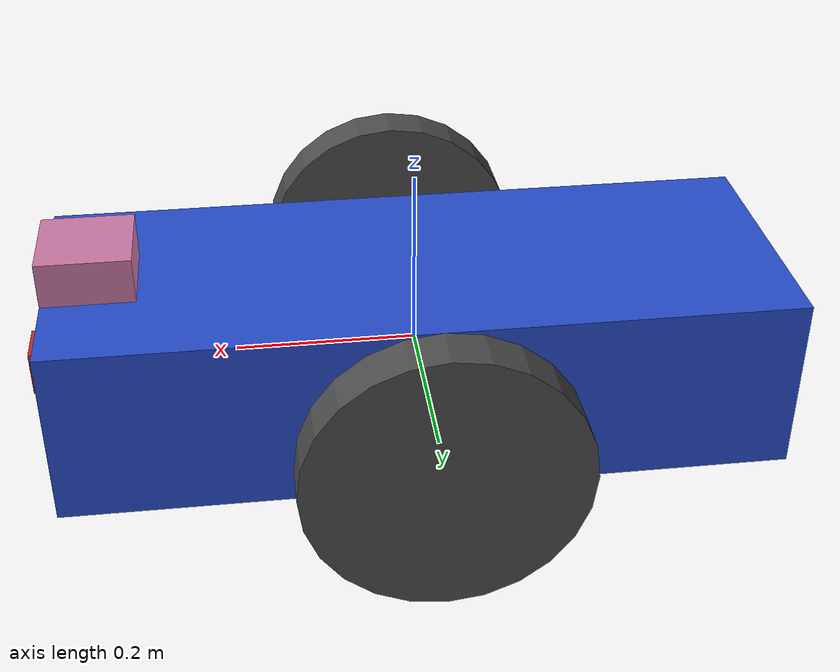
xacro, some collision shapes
<?xml version='1.0'?>

<robot name="my_robot" xmlns:xacro="http://www.ros.org/wiki/xacro">

  <xacro:include filename="$(find my_robot)/urdf/my_robot.gazebo" />

  <link name="robot_footprint"></link>

  <joint name="robot_footprint_joint" type="fixed">
    <origin xyz="0 0 0" rpy="0 0 0" />
    <parent link="robot_footprint"/>
    <child link="chassis" />
  </joint>

  <!--                      chassis                      -->
  <link name='chassis'>
    <pose>0 0 0.2 0 0 0</pose>

    <inertial>
      <mass value="15.0"/>
      <origin xyz="0.0 0 0" rpy=" 0 0 0"/>
      <inertia
          ixx="0.1" ixy="0" ixz="0"
          iyy="0.1" iyz="0"
          izz="0.1"
      />
    </inertial>

    <collision>
      <origin xyz="0 0 0" rpy=" 0 0 0"/>
      <geometry>
        <box size=".8 .3 .2"/>
      </geometry>
    </collision>

    <visual name='chassis_visual'>
      <origin xyz="0 0 0" rpy=" 0 0 0"/>
      <geometry>
        <box size=".8 .3 .2"/>
      </geometry>
    </visual>

    <collision name='back_caster_collision'>
      <origin xyz="-0.3 0 -0.075" rpy=" 0 0 0"/>
      <geometry>
        <sphere radius="0.075"/>
      </geometry>
    </collision>

    <visual name='back_caster_visual'>
      <origin xyz="-0.3 0 -0.075" rpy=" 0 0 0"/>
      <geometry>
        <sphere radius="0.075"/>
      </geometry>
    </visual>

    <collision name='front_caster_collision'>
      <origin xyz="0.3 0 -0.075" rpy=" 0 0 0"/>
      <geometry>
        <sphere radius="0.075"/>
      </geometry>
    </collision>

    <visual name='front_caster_visual'>
      <origin xyz="0.3 0 -0.075" rpy=" 0 0 0"/>
      <geometry>
        <sphere radius="0.075"/>
      </geometry>
    </visual>
  </link>
  <!--                      chassis                      -->

  <!--                      wheels                      -->
  <!-- left wheel -->
  <link name="left_wheel">
    <inertial>
      <mass value="5.0"/>
      <origin xyz="0 0 0" rpy="0 1.5707 1.5707"/>
      <inertia
          ixx="0.1" ixy="0" ixz="0"
          iyy="0.1" iyz="0"
          izz="0.1"
      />
    </inertial>

    <collision>
      <origin xyz="0 0 0" rpy="0 1.5707 1.5707"/>
      <geometry>
        <cylinder radius="0.15" length="0.05"/>
      </geometry>
    </collision>

    <visual>
      <origin xyz="0 0 0" rpy="0 1.5707 1.5707"/>
      <geometry>
        <cylinder radius="0.15" length="0.05"/>
      </geometry>
    </visual>
  </link>

  <!-- left wheel joint -->
  <joint type="continuous" name="left_wheel_hinge">
    <origin xyz="0 0.25 0" rpy="0 0 0"/>
    <child link="left_wheel"/>
    <parent link="chassis"/>
    <axis xyz="0 1 0" rpy="0 0 0"/>
    <limit effort="10000" velocity="1000"/>
    <dynamics damping="1.0" friction="1.0"/>
  </joint>

  <!-- right wheel -->
  <link name="right_wheel">
    <inertial>
      <mass value="5.0"/>
      <origin xyz="0 0 0" rpy="0 1.5707 1.5707"/>
      <inertia
          ixx="0.1" ixy="0" ixz="0"
          iyy="0.1" iyz="0"
          izz="0.1"
      />
    </inertial>

    <collision>
      <origin xyz="0 0 0" rpy="0 1.5707 1.5707"/>
      <geometry>
        <cylinder radius="0.15" length="0.05"/>
      </geometry>
    </collision>

    <visual>
      <origin xyz="0 0 0" rpy="0 1.5707 1.5707"/>
      <geometry>
        <cylinder radius="0.15" length="0.05"/>
      </geometry>
    </visual>
  </link>

  <!-- right wheel joint -->
  <joint type="continuous" name="right_wheel_hinge">
    <origin xyz="0 -0.25 0" rpy="0 0 0"/>
    <child link="right_wheel"/>
    <parent link="chassis"/>
    <axis xyz="0 1 0" rpy="0 0 0"/>
    <limit effort="10000" velocity="1000"/>
    <dynamics damping="1.0" friction="1.0"/>
  </joint>
  <!--                      wheels                      -->

  <!--                      sensors                      -->
  <!-- camera -->
  <link name="camera_link">
    <inertial>
      <mass value="0.1"/>
      <origin xyz="0 0 0" rpy="0 0 0"/>
      <inertia
          ixx="1e-6" ixy="0" ixz="0"
          iyy="1e-6" iyz="0"
          izz="1e-6"
      />
    </inertial>

    <collision>
      <origin xyz="0 0 0" rpy="0 0 0"/>
      <geometry>
        <box size="0.05 0.05 0.05"/>
      </geometry>
    </collision>

    <visual>
      <origin xyz="0 0 0" rpy="0 0 0"/>
      <geometry>
        <box size="0.05 0.05 0.05"/>
      </geometry>
    </visual>
  </link>

  <!-- camera optical link -->
  <link name="camera_link_optical">
  </link>

  <!-- camera joint -->
  <joint type="fixed" name="camera_joint">
    <origin xyz="0.4 0 0" rpy="0 0 0"/>
    <child link="camera_link"/>
    <parent link="chassis"/>
  </joint>

  <!-- camera_optical_joint -->
    <joint name="camera_optical_joint" type="fixed">
    <origin xyz="0 0 0" rpy="-1.5707 0 -1.5707"/>
    <parent link="camera_link"/>
    <child link="camera_link_optical"/>
  </joint>

  <!-- Hokuyo Lidar -->
  <link name="hokuyo">
    <inertial>
      <mass value="1e-5"/>
      <origin xyz="0 0 0" rpy="0 0 0"/>
      <inertia
          ixx="1e-6" ixy="0" ixz="0"
          iyy="1e-6" iyz="0"
          izz="1e-6"
      />
    </inertial>

    <collision>
      <origin xyz="0 0 0" rpy="0 0 0"/>
      <geometry>
        <box size="0.1 0.1 0.1"/>
      </geometry>
    </collision>

    <visual>
      <origin xyz="0 0 0" rpy="0 0 0"/>
      <geometry>
        <mesh filename="package://my_robot/meshes/hokuyo.dae"/>
      </geometry>
    </visual>
  </link>

  <!-- Lidar joint -->
  <joint type="fixed" name="hokuyo_joint">
    <origin xyz="0.35 0 0.1" rpy="0 0 0"/>
    <child link="hokuyo"/>
    <parent link="chassis"/>
  </joint>
  <!--                      sensors                      -->

  <!--                      colors                      -->
  <gazebo reference="left_wheel">
    <material>Gazebo/DarkGrey</material>
  </gazebo>

  <gazebo reference="right_wheel">
    <material>Gazebo/DarkGrey</material>
  </gazebo>

  <gazebo reference="chassis">
    <material>Gazebo/Blue</material>
  </gazebo>

  <gazebo reference="camera_link">
    <material>Gazebo/Red</material>
  </gazebo>
  <!--                      colors                      -->

</robot>
